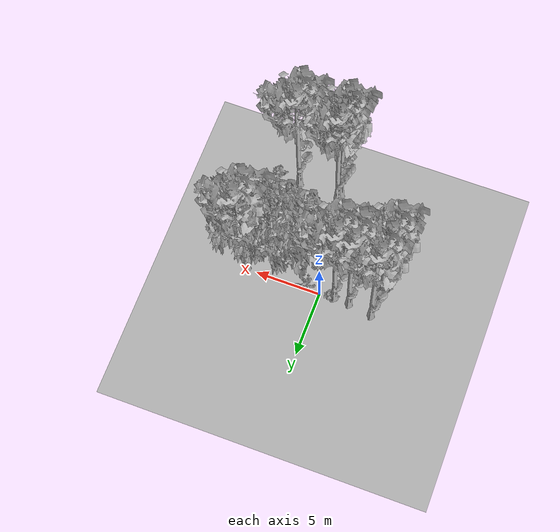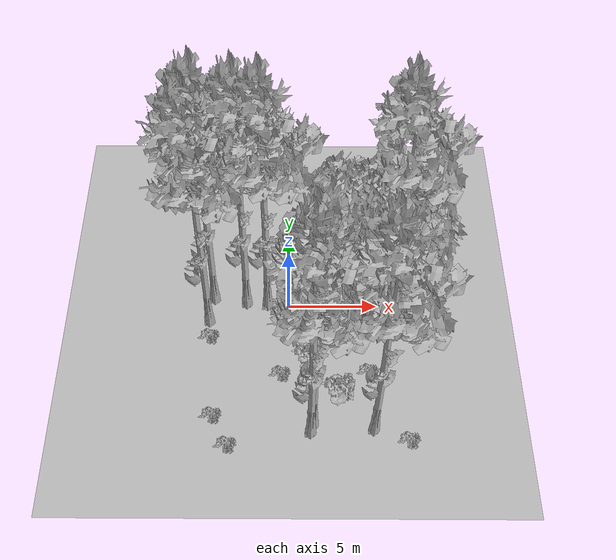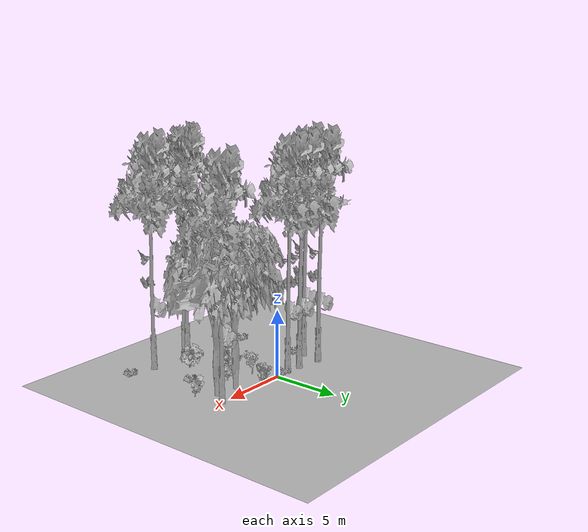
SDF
<sdf version="1.7">
 <world name="default">
  <model name="ground_plane">
   <static>1</static>
   <link name="link">
    <collision name="collision">
     <pose>-50 0 0 0 -0 0</pose>
     <geometry><plane><normal>0 0 1</normal><size>80 80</size></plane></geometry>
     <surface><contact><ode><min_depth>0.01</min_depth><max_vel>0</max_vel></ode></contact></surface>
    </collision>
    <visual name="grass">
     <cast_shadows>0</cast_shadows>
     <geometry>
      <mesh>
       <scale>0.46714285714285714 0.46714285714285714 0.1</scale>
       <uri>file://grass_plane/meshes/grass_plane.dae</uri>
      </mesh>
     </geometry>
    </visual>
   </link>
  </model>
  <model name="Tree 131">
   <static>1</static>
   <pose>1.175998601353328 -8.029614248443462 0 1.57079 -0 0</pose>
   <link name="link">
    <collision name="collision">
     <geometry><mesh><scale>3.5 5 3.5</scale><uri>model://tree_9/meshes/tree_9.obj</uri></mesh></geometry>
    </collision>
    <visual name="visual">
     <geometry><mesh><scale>3.5 5 3.5</scale><uri>model://tree_9/meshes/tree_9.obj</uri></mesh></geometry>
    </visual>
   </link>
  </model>
  <model name="Tree 203">
   <static>1</static>
   <pose>3.3259794696372182 -0.9542424060627681 0 1.57079 -0 0</pose>
   <link name="link">
    <collision name="collision">
     <geometry><mesh><scale>3.5 5 3.5</scale><uri>model://tree_2/meshes/tree_2.obj</uri></mesh></geometry>
    </collision>
    <visual name="visual">
     <geometry><mesh><scale>3.5 5 3.5</scale><uri>model://tree_2/meshes/tree_2.obj</uri></mesh></geometry>
    </visual>
   </link>
  </model>
  <model name="Tree 259">
   <static>1</static>
   <pose>-1.180353012669599 -0.0315410682904016 0 1.57079 -0 0</pose>
   <link name="link">
    <collision name="collision">
     <geometry><mesh><scale>3.5 5 3.5</scale><uri>model://tree_9/meshes/tree_9.obj</uri></mesh></geometry>
    </collision>
    <visual name="visual">
     <geometry><mesh><scale>3.5 5 3.5</scale><uri>model://tree_9/meshes/tree_9.obj</uri></mesh></geometry>
    </visual>
   </link>
  </model>
  <model name="Tree 273">
   <static>1</static>
   <pose>5.770375481532888 -0.03635297679594629 0 1.57079 -0 0</pose>
   <link name="link">
    <collision name="collision">
     <geometry><mesh><scale>3.5 5 3.5</scale><uri>model://tree_9/meshes/tree_9.obj</uri></mesh></geometry>
    </collision>
    <visual name="visual">
     <geometry><mesh><scale>3.5 5 3.5</scale><uri>model://tree_9/meshes/tree_9.obj</uri></mesh></geometry>
    </visual>
   </link>
  </model>
  <model name="Tree 480">
   <static>1</static>
   <pose>4.480276076674919 -7.847403652020063 0 1.57079 -0 0</pose>
   <link name="link">
    <collision name="collision">
     <geometry><mesh><scale>3.5 5 3.5</scale><uri>model://tree_9/meshes/tree_9.obj</uri></mesh></geometry>
    </collision>
    <visual name="visual">
     <geometry><mesh><scale>3.5 5 3.5</scale><uri>model://tree_9/meshes/tree_9.obj</uri></mesh></geometry>
    </visual>
   </link>
  </model>
  <model name="Tree 484">
   <static>1</static>
   <pose>5.0078086731103255 -1.137125706740818 0 1.57079 -0 0</pose>
   <link name="link">
    <collision name="collision">
     <geometry><mesh><scale>3.5 5 3.5</scale><uri>model://tree_2/meshes/tree_2.obj</uri></mesh></geometry>
    </collision>
    <visual name="visual">
     <geometry><mesh><scale>3.5 5 3.5</scale><uri>model://tree_2/meshes/tree_2.obj</uri></mesh></geometry>
    </visual>
   </link>
  </model>
  <model name="Tree 553">
   <static>1</static>
   <pose>-4.432463716805401 -1.1580008751995408 0 1.57079 -0 0</pose>
   <link name="link">
    <collision name="collision">
     <geometry><mesh><scale>3.5 5 3.5</scale><uri>model://tree_9/meshes/tree_9.obj</uri></mesh></geometry>
    </collision>
    <visual name="visual">
     <geometry><mesh><scale>3.5 5 3.5</scale><uri>model://tree_9/meshes/tree_9.obj</uri></mesh></geometry>
    </visual>
   </link>
  </model>
  <model name="Tree 581">
   <static>1</static>
   <pose>1.30909192821278 -7.584607240098471 0 1.57079 -0 0</pose>
   <link name="link">
    <collision name="collision">
     <geometry><mesh><scale>3.5 5 3.5</scale><uri>model://tree_9/meshes/tree_9.obj</uri></mesh></geometry>
    </collision>
    <visual name="visual">
     <geometry><mesh><scale>3.5 5 3.5</scale><uri>model://tree_9/meshes/tree_9.obj</uri></mesh></geometry>
    </visual>
   </link>
  </model>
  <model name="Tree 613">
   <static>1</static>
   <pose>-2.3604806853261238 0.07751527411478065 0 1.57079 -0 0</pose>
   <link name="link">
    <collision name="collision">
     <geometry><mesh><scale>3.5 5 3.5</scale><uri>model://tree_9/meshes/tree_9.obj</uri></mesh></geometry>
    </collision>
    <visual name="visual">
     <geometry><mesh><scale>3.5 5 3.5</scale><uri>model://tree_9/meshes/tree_9.obj</uri></mesh></geometry>
    </visual>
   </link>
  </model>
  <model name="Tree 631">
   <static>1</static>
   <pose>-4.197527137223837 0.3735598586480009 0 1.57079 -0 0</pose>
   <link name="link">
    <collision name="collision">
     <geometry><mesh><scale>3.5 5 3.5</scale><uri>model://tree_9/meshes/tree_9.obj</uri></mesh></geometry>
    </collision>
    <visual name="visual">
     <geometry><mesh><scale>3.5 5 3.5</scale><uri>model://tree_9/meshes/tree_9.obj</uri></mesh></geometry>
    </visual>
   </link>
  </model>
  <model name="Bush 46">
   <static>1</static>
   <pose>1.1675924432638993 -0.34794953749943147 0 1.57079 -0 0</pose>
   <link name="link">
    <collision name="collision">
     <geometry><mesh><scale>2 2 2</scale><uri>model://bush_4/meshes/bush_4.obj</uri></mesh></geometry>
     <surface><contact><collide_without_contact>false</collide_without_contact></contact></surface>
    </collision>
    <visual name="visual">
     <geometry><mesh><scale>2 2 2</scale><uri>model://bush_4/meshes/bush_4.obj</uri></mesh></geometry>
    </visual>
   </link>
  </model>
  <model name="Bush 158">
   <static>1</static>
   <pose>-0.4330601151102229 -4.482532507724159 0 1.57079 -0 0</pose>
   <link name="link">
    <collision name="collision">
     <geometry><mesh><scale>2 2 2</scale><uri>model://bush_2/meshes/bush_2.obj</uri></mesh></geometry>
     <surface><contact><collide_without_contact>false</collide_without_contact></contact></surface>
    </collision>
    <visual name="visual">
     <geometry><mesh><scale>2 2 2</scale><uri>model://bush_2/meshes/bush_2.obj</uri></mesh></geometry>
    </visual>
   </link>
  </model>
  <model name="Bush 218">
   <static>1</static>
   <pose>4.35142647091299 -4.330523583413068 0 1.57079 -0 0</pose>
   <link name="link">
    <collision name="collision">
     <geometry><mesh><scale>2 2 2</scale><uri>model://bush_2/meshes/bush_2.obj</uri></mesh></geometry>
     <surface><contact><collide_without_contact>false</collide_without_contact></contact></surface>
    </collision>
    <visual name="visual">
     <geometry><mesh><scale>2 2 2</scale><uri>model://bush_2/meshes/bush_2.obj</uri></mesh></geometry>
    </visual>
   </link>
  </model>
  <model name="Bush 222">
   <static>1</static>
   <pose>1.1443180561237511 -3.9739899499472457 0 1.57079 -0 0</pose>
   <link name="link">
    <collision name="collision">
     <geometry><mesh><scale>2 2 2</scale><uri>model://bush_1/meshes/bush_1.obj</uri></mesh></geometry>
     <surface><contact><collide_without_contact>false</collide_without_contact></contact></surface>
    </collision>
    <visual name="visual">
     <geometry><mesh><scale>2 2 2</scale><uri>model://bush_1/meshes/bush_1.obj</uri></mesh></geometry>
    </visual>
   </link>
  </model>
  <model name="Bush 224">
   <static>1</static>
   <pose>-3.2323001054668623 -8.698434446240775 0 1.57079 -0 0</pose>
   <link name="link">
    <collision name="collision">
     <geometry><mesh><scale>2 2 2</scale><uri>model://bush_2/meshes/bush_2.obj</uri></mesh></geometry>
     <surface><contact><collide_without_contact>false</collide_without_contact></contact></surface>
    </collision>
    <visual name="visual">
     <geometry><mesh><scale>2 2 2</scale><uri>model://bush_2/meshes/bush_2.obj</uri></mesh></geometry>
    </visual>
   </link>
  </model>
  <model name="Bush 280">
   <static>1</static>
   <pose>2.7264459546184625 -5.981364591537087 0 1.57079 -0 0</pose>
   <link name="link">
    <collision name="collision">
     <geometry><mesh><scale>2 2 2</scale><uri>model://bush_1/meshes/bush_1.obj</uri></mesh></geometry>
     <surface><contact><collide_without_contact>false</collide_without_contact></contact></surface>
    </collision>
    <visual name="visual">
     <geometry><mesh><scale>2 2 2</scale><uri>model://bush_1/meshes/bush_1.obj</uri></mesh></geometry>
    </visual>
   </link>
  </model>
  <model name="Bush 287">
   <static>1</static>
   <pose>-4.417564987641185 -2.111072590929652 0 1.57079 -0 0</pose>
   <link name="link">
    <collision name="collision">
     <geometry><mesh><scale>2 2 2</scale><uri>model://bush_2/meshes/bush_2.obj</uri></mesh></geometry>
     <surface><contact><collide_without_contact>false</collide_without_contact></contact></surface>
    </collision>
    <visual name="visual">
     <geometry><mesh><scale>2 2 2</scale><uri>model://bush_2/meshes/bush_2.obj</uri></mesh></geometry>
    </visual>
   </link>
  </model>
  <model name="Bush 319">
   <static>1</static>
   <pose>0.7460146848889266 -1.7242089578653435 0 1.57079 -0 0</pose>
   <link name="link">
    <collision name="collision">
     <geometry><mesh><scale>2 2 2</scale><uri>model://bush_5/meshes/bush_5.obj</uri></mesh></geometry>
     <surface><contact><collide_without_contact>false</collide_without_contact></contact></surface>
    </collision>
    <visual name="visual">
     <geometry><mesh><scale>2 2 2</scale><uri>model://bush_5/meshes/bush_5.obj</uri></mesh></geometry>
    </visual>
   </link>
  </model>
  <model name="Bush 434">
   <static>1</static>
   <pose>6.320349807022296 -8.400884345764787 0 1.57079 -0 0</pose>
   <link name="link">
    <collision name="collision">
     <geometry><mesh><scale>2 2 2</scale><uri>model://bush_2/meshes/bush_2.obj</uri></mesh></geometry>
     <surface><contact><collide_without_contact>false</collide_without_contact></contact></surface>
    </collision>
    <visual name="visual">
     <geometry><mesh><scale>2 2 2</scale><uri>model://bush_2/meshes/bush_2.obj</uri></mesh></geometry>
    </visual>
   </link>
  </model>
  <model name="Bush 523">
   <static>1</static>
   <pose>2.7179457093179664 -2.301884003016255 0 1.57079 -0 0</pose>
   <link name="link">
    <collision name="collision">
     <geometry><mesh><scale>2 2 2</scale><uri>model://bush_0/meshes/bush_0.obj</uri></mesh></geometry>
     <surface><contact><collide_without_contact>false</collide_without_contact></contact></surface>
    </collision>
    <visual name="visual">
     <geometry><mesh><scale>2 2 2</scale><uri>model://bush_0/meshes/bush_0.obj</uri></mesh></geometry>
    </visual>
   </link>
  </model>
  <model name="Bush 578">
   <static>1</static>
   <pose>6.187059944849516 -2.138851523134406 0 1.57079 -0 0</pose>
   <link name="link">
    <collision name="collision">
     <geometry><mesh><scale>2 2 2</scale><uri>model://bush_0/meshes/bush_0.obj</uri></mesh></geometry>
     <surface><contact><collide_without_contact>false</collide_without_contact></contact></surface>
    </collision>
    <visual name="visual">
     <geometry><mesh><scale>2 2 2</scale><uri>model://bush_0/meshes/bush_0.obj</uri></mesh></geometry>
    </visual>
   </link>
  </model>
  <model name="Bush 581">
   <static>1</static>
   <pose>-4.079018683831649 -7.006009672560623 0 1.57079 -0 0</pose>
   <link name="link">
    <collision name="collision">
     <geometry><mesh><scale>2 2 2</scale><uri>model://bush_2/meshes/bush_2.obj</uri></mesh></geometry>
     <surface><contact><collide_without_contact>false</collide_without_contact></contact></surface>
    </collision>
    <visual name="visual">
     <geometry><mesh><scale>2 2 2</scale><uri>model://bush_2/meshes/bush_2.obj</uri></mesh></geometry>
    </visual>
   </link>
  </model>
  <model name="Bush 639">
   <static>1</static>
   <pose>-0.8947809541420924 -0.16210627396854704 0 1.57079 -0 0</pose>
   <link name="link">
    <collision name="collision">
     <geometry><mesh><scale>2 2 2</scale><uri>model://bush_2/meshes/bush_2.obj</uri></mesh></geometry>
     <surface><contact><collide_without_contact>false</collide_without_contact></contact></surface>
    </collision>
    <visual name="visual">
     <geometry><mesh><scale>2 2 2</scale><uri>model://bush_2/meshes/bush_2.obj</uri></mesh></geometry>
    </visual>
   </link>
  </model>
 </world>
</sdf>
